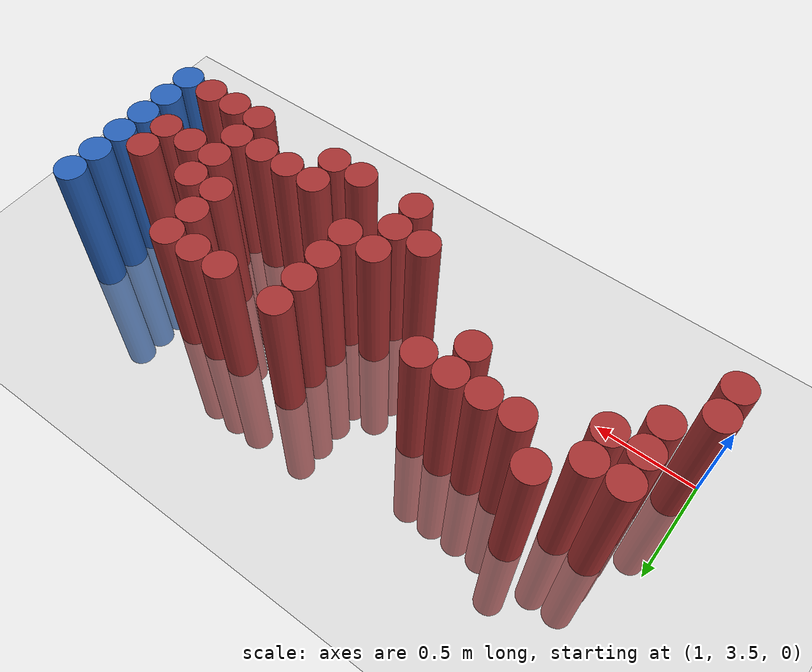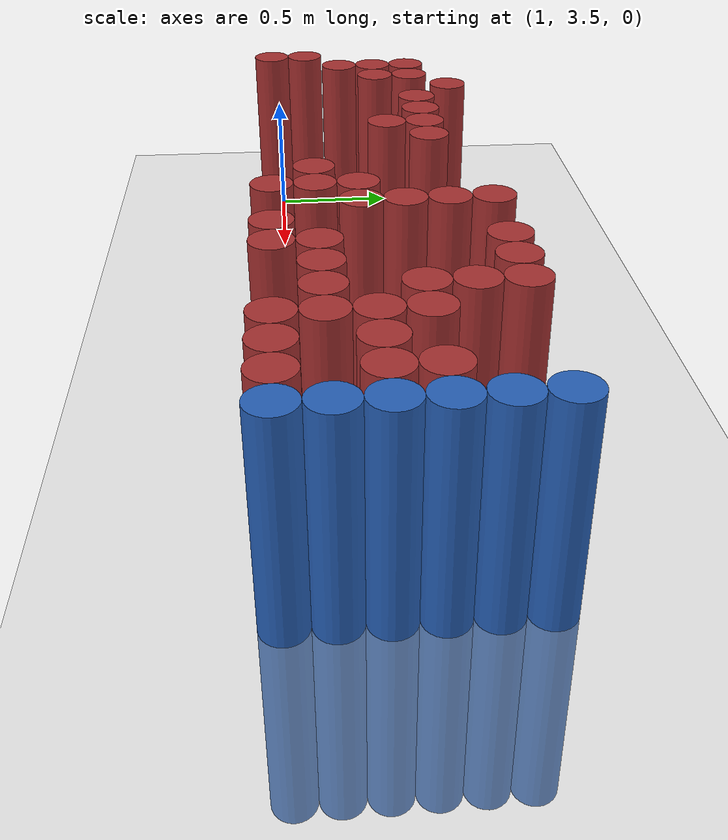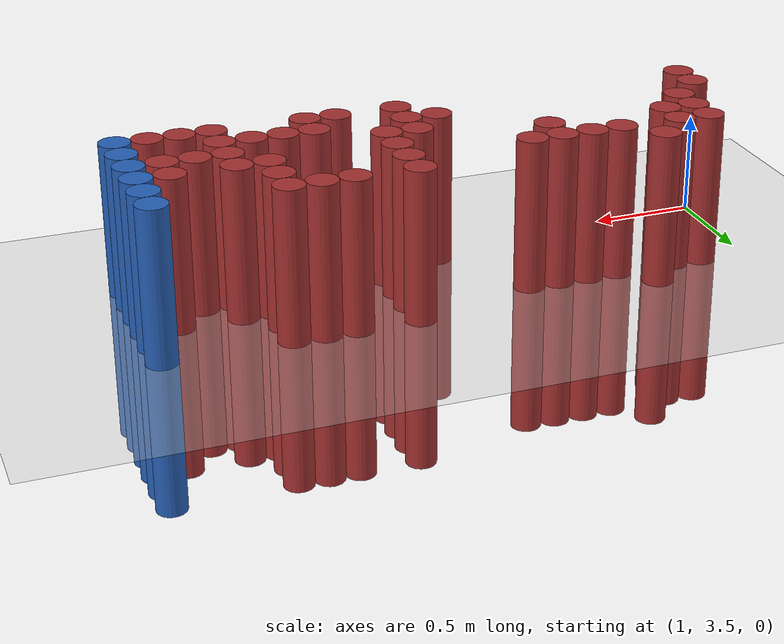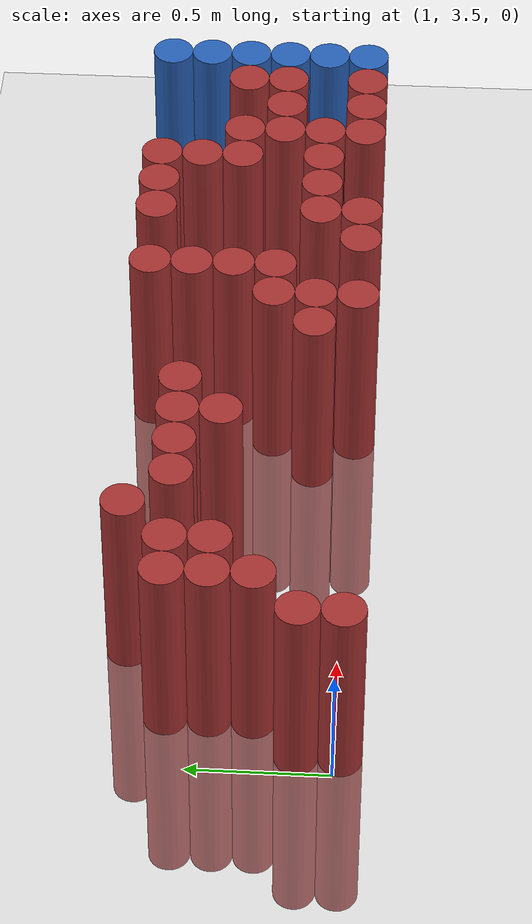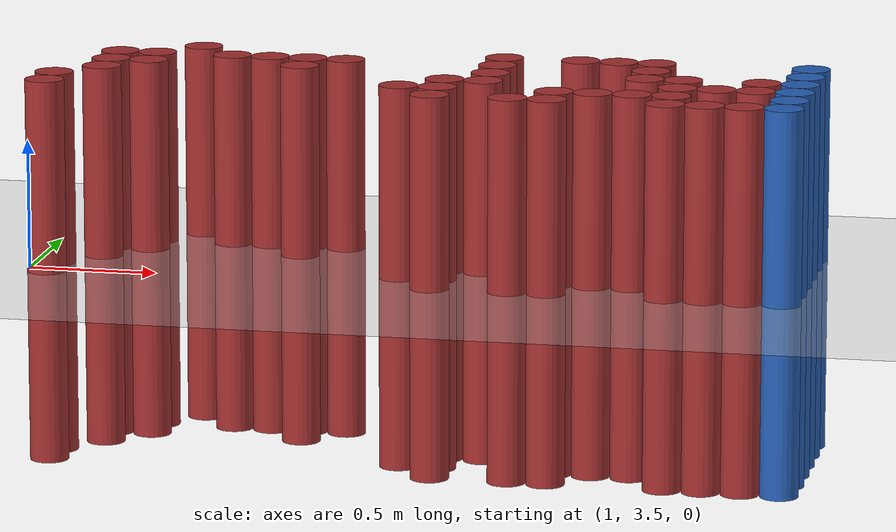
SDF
<sdf version="1.6">
 <world name="default">
  <model name="ground_plane">
   <static>1</static>
   <link name="link">
    <collision name="collision">
     <geometry><plane><normal>0 0 1</normal><size>100 100</size></plane></geometry>
     <surface><friction><ode><mu>100</mu><mu2>50</mu2></ode></friction></surface>
    </collision>
    <visual name="visual">
     <cast_shadows>0</cast_shadows>
     <geometry><plane><normal>0 0 1</normal><size>100 100</size></plane></geometry>
     <material>
      <script><uri>file://media/materials/scripts/gazebo.material</uri><name>Gazebo/Grey</name></script>
     </material>
    </visual>
   </link>
  </model>
  <model name="unit_cylinder_160">
   <static>1</static>
   <pose>3.925000 3.475000 0.000000 0.000000 0.000000 0.000000</pose>
   <link name="link">
    <inertial>
     <mass>1</mass>
     <inertia><ixx>0.145833</ixx><ixy>0</ixy><ixz>0</ixz><iyy>0.145833</iyy><iyz>0</iyz><izz>0.125</izz></inertia>
    </inertial>
    <collision name="collision">
     <geometry><cylinder><radius>0.075000</radius><length>1.5</length></cylinder></geometry>
    </collision>
    <visual name="visual">
     <geometry><cylinder><radius>0.075000</radius><length>1.5</length></cylinder></geometry>
     <material>
      <ambient>0.152000 0.379000 0.720000 1</ambient>
      <diffuse>0.152000 0.379000 0.720000 1</diffuse>
     </material>
     <material>
      <script><name>Gazebo/Grey</name><uri>file://media/materials/scripts/gazebo.material</uri></script>
     </material>
    </visual>
   </link>
  </model>
  <model name="unit_cylinder_162">
   <static>1</static>
   <pose>3.925000 3.625000 0.000000 0.000000 0.000000 0.000000</pose>
   <link name="link">
    <inertial>
     <mass>1</mass>
     <inertia><ixx>0.145833</ixx><ixy>0</ixy><ixz>0</ixz><iyy>0.145833</iyy><iyz>0</iyz><izz>0.125</izz></inertia>
    </inertial>
    <collision name="collision">
     <geometry><cylinder><radius>0.075000</radius><length>1.5</length></cylinder></geometry>
    </collision>
    <visual name="visual">
     <geometry><cylinder><radius>0.075000</radius><length>1.5</length></cylinder></geometry>
     <material>
      <ambient>0.152000 0.379000 0.720000 1</ambient>
      <diffuse>0.152000 0.379000 0.720000 1</diffuse>
     </material>
     <material>
      <script><name>Gazebo/Grey</name><uri>file://media/materials/scripts/gazebo.material</uri></script>
     </material>
    </visual>
   </link>
  </model>
  <model name="unit_cylinder_164">
   <static>1</static>
   <pose>3.925000 3.775000 0.000000 0.000000 0.000000 0.000000</pose>
   <link name="link">
    <inertial>
     <mass>1</mass>
     <inertia><ixx>0.145833</ixx><ixy>0</ixy><ixz>0</ixz><iyy>0.145833</iyy><iyz>0</iyz><izz>0.125</izz></inertia>
    </inertial>
    <collision name="collision">
     <geometry><cylinder><radius>0.075000</radius><length>1.5</length></cylinder></geometry>
    </collision>
    <visual name="visual">
     <geometry><cylinder><radius>0.075000</radius><length>1.5</length></cylinder></geometry>
     <material>
      <ambient>0.152000 0.379000 0.720000 1</ambient>
      <diffuse>0.152000 0.379000 0.720000 1</diffuse>
     </material>
     <material>
      <script><name>Gazebo/Grey</name><uri>file://media/materials/scripts/gazebo.material</uri></script>
     </material>
    </visual>
   </link>
  </model>
  <model name="unit_cylinder_166">
   <static>1</static>
   <pose>3.925000 3.925000 0.000000 0.000000 0.000000 0.000000</pose>
   <link name="link">
    <inertial>
     <mass>1</mass>
     <inertia><ixx>0.145833</ixx><ixy>0</ixy><ixz>0</ixz><iyy>0.145833</iyy><iyz>0</iyz><izz>0.125</izz></inertia>
    </inertial>
    <collision name="collision">
     <geometry><cylinder><radius>0.075000</radius><length>1.5</length></cylinder></geometry>
    </collision>
    <visual name="visual">
     <geometry><cylinder><radius>0.075000</radius><length>1.5</length></cylinder></geometry>
     <material>
      <ambient>0.152000 0.379000 0.720000 1</ambient>
      <diffuse>0.152000 0.379000 0.720000 1</diffuse>
     </material>
     <material>
      <script><name>Gazebo/Grey</name><uri>file://media/materials/scripts/gazebo.material</uri></script>
     </material>
    </visual>
   </link>
  </model>
  <model name="unit_cylinder_168">
   <static>1</static>
   <pose>3.925000 4.075000 0.000000 0.000000 0.000000 0.000000</pose>
   <link name="link">
    <inertial>
     <mass>1</mass>
     <inertia><ixx>0.145833</ixx><ixy>0</ixy><ixz>0</ixz><iyy>0.145833</iyy><iyz>0</iyz><izz>0.125</izz></inertia>
    </inertial>
    <collision name="collision">
     <geometry><cylinder><radius>0.075000</radius><length>1.5</length></cylinder></geometry>
    </collision>
    <visual name="visual">
     <geometry><cylinder><radius>0.075000</radius><length>1.5</length></cylinder></geometry>
     <material>
      <ambient>0.152000 0.379000 0.720000 1</ambient>
      <diffuse>0.152000 0.379000 0.720000 1</diffuse>
     </material>
     <material>
      <script><name>Gazebo/Grey</name><uri>file://media/materials/scripts/gazebo.material</uri></script>
     </material>
    </visual>
   </link>
  </model>
  <model name="unit_cylinder_170">
   <static>1</static>
   <pose>3.925000 4.225000 0.000000 0.000000 0.000000 0.000000</pose>
   <link name="link">
    <inertial>
     <mass>1</mass>
     <inertia><ixx>0.145833</ixx><ixy>0</ixy><ixz>0</ixz><iyy>0.145833</iyy><iyz>0</iyz><izz>0.125</izz></inertia>
    </inertial>
    <collision name="collision">
     <geometry><cylinder><radius>0.075000</radius><length>1.5</length></cylinder></geometry>
    </collision>
    <visual name="visual">
     <geometry><cylinder><radius>0.075000</radius><length>1.5</length></cylinder></geometry>
     <material>
      <ambient>0.152000 0.379000 0.720000 1</ambient>
      <diffuse>0.152000 0.379000 0.720000 1</diffuse>
     </material>
     <material>
      <script><name>Gazebo/Grey</name><uri>file://media/materials/scripts/gazebo.material</uri></script>
     </material>
    </visual>
   </link>
  </model>
  <model name="unit_cylinder_408">
   <static>1</static>
   <pose>1.075000 3.475000 0.000000 0.000000 0.000000 0.000000</pose>
   <link name="link">
    <inertial>
     <mass>1</mass>
     <inertia><ixx>0.145833</ixx><ixy>0</ixy><ixz>0</ixz><iyy>0.145833</iyy><iyz>0</iyz><izz>0.125</izz></inertia>
    </inertial>
    <collision name="collision">
     <geometry><cylinder><radius>0.075000</radius><length>1.5</length></cylinder></geometry>
    </collision>
    <visual name="visual">
     <geometry><cylinder><radius>0.075000</radius><length>1.5</length></cylinder></geometry>
     <material>
      <ambient>0.648000 0.192000 0.192000 1</ambient>
      <diffuse>0.648000 0.192000 0.192000 1</diffuse>
     </material>
     <material>
      <script><name>Gazebo/Grey</name><uri>file://media/materials/scripts/gazebo.material</uri></script>
     </material>
    </visual>
   </link>
  </model>
  <model name="unit_cylinder_409">
   <static>1</static>
   <pose>1.075000 3.625000 0.000000 0.000000 0.000000 0.000000</pose>
   <link name="link">
    <inertial>
     <mass>1</mass>
     <inertia><ixx>0.145833</ixx><ixy>0</ixy><ixz>0</ixz><iyy>0.145833</iyy><iyz>0</iyz><izz>0.125</izz></inertia>
    </inertial>
    <collision name="collision">
     <geometry><cylinder><radius>0.075000</radius><length>1.5</length></cylinder></geometry>
    </collision>
    <visual name="visual">
     <geometry><cylinder><radius>0.075000</radius><length>1.5</length></cylinder></geometry>
     <material>
      <ambient>0.648000 0.192000 0.192000 1</ambient>
      <diffuse>0.648000 0.192000 0.192000 1</diffuse>
     </material>
     <material>
      <script><name>Gazebo/Grey</name><uri>file://media/materials/scripts/gazebo.material</uri></script>
     </material>
    </visual>
   </link>
  </model>
  <model name="unit_cylinder_417">
   <static>1</static>
   <pose>1.225000 3.775000 0.000000 0.000000 0.000000 0.000000</pose>
   <link name="link">
    <inertial>
     <mass>1</mass>
     <inertia><ixx>0.145833</ixx><ixy>0</ixy><ixz>0</ixz><iyy>0.145833</iyy><iyz>0</iyz><izz>0.125</izz></inertia>
    </inertial>
    <collision name="collision">
     <geometry><cylinder><radius>0.075000</radius><length>1.5</length></cylinder></geometry>
    </collision>
    <visual name="visual">
     <geometry><cylinder><radius>0.075000</radius><length>1.5</length></cylinder></geometry>
     <material>
      <ambient>0.648000 0.192000 0.192000 1</ambient>
      <diffuse>0.648000 0.192000 0.192000 1</diffuse>
     </material>
     <material>
      <script><name>Gazebo/Grey</name><uri>file://media/materials/scripts/gazebo.material</uri></script>
     </material>
    </visual>
   </link>
  </model>
  <model name="unit_cylinder_418">
   <static>1</static>
   <pose>1.225000 3.925000 0.000000 0.000000 0.000000 0.000000</pose>
   <link name="link">
    <inertial>
     <mass>1</mass>
     <inertia><ixx>0.145833</ixx><ixy>0</ixy><ixz>0</ixz><iyy>0.145833</iyy><iyz>0</iyz><izz>0.125</izz></inertia>
    </inertial>
    <collision name="collision">
     <geometry><cylinder><radius>0.075000</radius><length>1.5</length></cylinder></geometry>
    </collision>
    <visual name="visual">
     <geometry><cylinder><radius>0.075000</radius><length>1.5</length></cylinder></geometry>
     <material>
      <ambient>0.648000 0.192000 0.192000 1</ambient>
      <diffuse>0.648000 0.192000 0.192000 1</diffuse>
     </material>
     <material>
      <script><name>Gazebo/Grey</name><uri>file://media/materials/scripts/gazebo.material</uri></script>
     </material>
    </visual>
   </link>
  </model>
  <model name="unit_cylinder_419">
   <static>1</static>
   <pose>1.225000 4.075000 0.000000 0.000000 0.000000 0.000000</pose>
   <link name="link">
    <inertial>
     <mass>1</mass>
     <inertia><ixx>0.145833</ixx><ixy>0</ixy><ixz>0</ixz><iyy>0.145833</iyy><iyz>0</iyz><izz>0.125</izz></inertia>
    </inertial>
    <collision name="collision">
     <geometry><cylinder><radius>0.075000</radius><length>1.5</length></cylinder></geometry>
    </collision>
    <visual name="visual">
     <geometry><cylinder><radius>0.075000</radius><length>1.5</length></cylinder></geometry>
     <material>
      <ambient>0.648000 0.192000 0.192000 1</ambient>
      <diffuse>0.648000 0.192000 0.192000 1</diffuse>
     </material>
     <material>
      <script><name>Gazebo/Grey</name><uri>file://media/materials/scripts/gazebo.material</uri></script>
     </material>
    </visual>
   </link>
  </model>
  <model name="unit_cylinder_426">
   <static>1</static>
   <pose>1.375000 3.925000 0.000000 0.000000 0.000000 0.000000</pose>
   <link name="link">
    <inertial>
     <mass>1</mass>
     <inertia><ixx>0.145833</ixx><ixy>0</ixy><ixz>0</ixz><iyy>0.145833</iyy><iyz>0</iyz><izz>0.125</izz></inertia>
    </inertial>
    <collision name="collision">
     <geometry><cylinder><radius>0.075000</radius><length>1.5</length></cylinder></geometry>
    </collision>
    <visual name="visual">
     <geometry><cylinder><radius>0.075000</radius><length>1.5</length></cylinder></geometry>
     <material>
      <ambient>0.648000 0.192000 0.192000 1</ambient>
      <diffuse>0.648000 0.192000 0.192000 1</diffuse>
     </material>
     <material>
      <script><name>Gazebo/Grey</name><uri>file://media/materials/scripts/gazebo.material</uri></script>
     </material>
    </visual>
   </link>
  </model>
  <model name="unit_cylinder_427">
   <static>1</static>
   <pose>1.375000 4.075000 0.000000 0.000000 0.000000 0.000000</pose>
   <link name="link">
    <inertial>
     <mass>1</mass>
     <inertia><ixx>0.145833</ixx><ixy>0</ixy><ixz>0</ixz><iyy>0.145833</iyy><iyz>0</iyz><izz>0.125</izz></inertia>
    </inertial>
    <collision name="collision">
     <geometry><cylinder><radius>0.075000</radius><length>1.5</length></cylinder></geometry>
    </collision>
    <visual name="visual">
     <geometry><cylinder><radius>0.075000</radius><length>1.5</length></cylinder></geometry>
     <material>
      <ambient>0.648000 0.192000 0.192000 1</ambient>
      <diffuse>0.648000 0.192000 0.192000 1</diffuse>
     </material>
     <material>
      <script><name>Gazebo/Grey</name><uri>file://media/materials/scripts/gazebo.material</uri></script>
     </material>
    </visual>
   </link>
  </model>
  <model name="unit_cylinder_435">
   <static>1</static>
   <pose>1.525000 4.225000 0.000000 0.000000 0.000000 0.000000</pose>
   <link name="link">
    <inertial>
     <mass>1</mass>
     <inertia><ixx>0.145833</ixx><ixy>0</ixy><ixz>0</ixz><iyy>0.145833</iyy><iyz>0</iyz><izz>0.125</izz></inertia>
    </inertial>
    <collision name="collision">
     <geometry><cylinder><radius>0.075000</radius><length>1.5</length></cylinder></geometry>
    </collision>
    <visual name="visual">
     <geometry><cylinder><radius>0.075000</radius><length>1.5</length></cylinder></geometry>
     <material>
      <ambient>0.648000 0.192000 0.192000 1</ambient>
      <diffuse>0.648000 0.192000 0.192000 1</diffuse>
     </material>
     <material>
      <script><name>Gazebo/Grey</name><uri>file://media/materials/scripts/gazebo.material</uri></script>
     </material>
    </visual>
   </link>
  </model>
  <model name="unit_cylinder_444">
   <static>1</static>
   <pose>1.675000 4.075000 0.000000 0.000000 0.000000 0.000000</pose>
   <link name="link">
    <inertial>
     <mass>1</mass>
     <inertia><ixx>0.145833</ixx><ixy>0</ixy><ixz>0</ixz><iyy>0.145833</iyy><iyz>0</iyz><izz>0.125</izz></inertia>
    </inertial>
    <collision name="collision">
     <geometry><cylinder><radius>0.075000</radius><length>1.5</length></cylinder></geometry>
    </collision>
    <visual name="visual">
     <geometry><cylinder><radius>0.075000</radius><length>1.5</length></cylinder></geometry>
     <material>
      <ambient>0.648000 0.192000 0.192000 1</ambient>
      <diffuse>0.648000 0.192000 0.192000 1</diffuse>
     </material>
     <material>
      <script><name>Gazebo/Grey</name><uri>file://media/materials/scripts/gazebo.material</uri></script>
     </material>
    </visual>
   </link>
  </model>
  <model name="unit_cylinder_452">
   <static>1</static>
   <pose>1.825000 4.075000 0.000000 0.000000 0.000000 0.000000</pose>
   <link name="link">
    <inertial>
     <mass>1</mass>
     <inertia><ixx>0.145833</ixx><ixy>0</ixy><ixz>0</ixz><iyy>0.145833</iyy><iyz>0</iyz><izz>0.125</izz></inertia>
    </inertial>
    <collision name="collision">
     <geometry><cylinder><radius>0.075000</radius><length>1.5</length></cylinder></geometry>
    </collision>
    <visual name="visual">
     <geometry><cylinder><radius>0.075000</radius><length>1.5</length></cylinder></geometry>
     <material>
      <ambient>0.648000 0.192000 0.192000 1</ambient>
      <diffuse>0.648000 0.192000 0.192000 1</diffuse>
     </material>
     <material>
      <script><name>Gazebo/Grey</name><uri>file://media/materials/scripts/gazebo.material</uri></script>
     </material>
    </visual>
   </link>
  </model>
  <model name="unit_cylinder_464">
   <static>1</static>
   <pose>1.975000 3.925000 0.000000 0.000000 0.000000 0.000000</pose>
   <link name="link">
    <inertial>
     <mass>1</mass>
     <inertia><ixx>0.145833</ixx><ixy>0</ixy><ixz>0</ixz><iyy>0.145833</iyy><iyz>0</iyz><izz>0.125</izz></inertia>
    </inertial>
    <collision name="collision">
     <geometry><cylinder><radius>0.075000</radius><length>1.5</length></cylinder></geometry>
    </collision>
    <visual name="visual">
     <geometry><cylinder><radius>0.075000</radius><length>1.5</length></cylinder></geometry>
     <material>
      <ambient>0.648000 0.192000 0.192000 1</ambient>
      <diffuse>0.648000 0.192000 0.192000 1</diffuse>
     </material>
     <material>
      <script><name>Gazebo/Grey</name><uri>file://media/materials/scripts/gazebo.material</uri></script>
     </material>
    </visual>
   </link>
  </model>
  <model name="unit_cylinder_465">
   <static>1</static>
   <pose>1.975000 4.075000 0.000000 0.000000 0.000000 0.000000</pose>
   <link name="link">
    <inertial>
     <mass>1</mass>
     <inertia><ixx>0.145833</ixx><ixy>0</ixy><ixz>0</ixz><iyy>0.145833</iyy><iyz>0</iyz><izz>0.125</izz></inertia>
    </inertial>
    <collision name="collision">
     <geometry><cylinder><radius>0.075000</radius><length>1.5</length></cylinder></geometry>
    </collision>
    <visual name="visual">
     <geometry><cylinder><radius>0.075000</radius><length>1.5</length></cylinder></geometry>
     <material>
      <ambient>0.648000 0.192000 0.192000 1</ambient>
      <diffuse>0.648000 0.192000 0.192000 1</diffuse>
     </material>
     <material>
      <script><name>Gazebo/Grey</name><uri>file://media/materials/scripts/gazebo.material</uri></script>
     </material>
    </visual>
   </link>
  </model>
  <model name="unit_cylinder_475">
   <static>1</static>
   <pose>2.125000 4.075000 0.000000 0.000000 0.000000 0.000000</pose>
   <link name="link">
    <inertial>
     <mass>1</mass>
     <inertia><ixx>0.145833</ixx><ixy>0</ixy><ixz>0</ixz><iyy>0.145833</iyy><iyz>0</iyz><izz>0.125</izz></inertia>
    </inertial>
    <collision name="collision">
     <geometry><cylinder><radius>0.075000</radius><length>1.5</length></cylinder></geometry>
    </collision>
    <visual name="visual">
     <geometry><cylinder><radius>0.075000</radius><length>1.5</length></cylinder></geometry>
     <material>
      <ambient>0.648000 0.192000 0.192000 1</ambient>
      <diffuse>0.648000 0.192000 0.192000 1</diffuse>
     </material>
     <material>
      <script><name>Gazebo/Grey</name><uri>file://media/materials/scripts/gazebo.material</uri></script>
     </material>
    </visual>
   </link>
  </model>
  <model name="unit_cylinder_487">
   <static>1</static>
   <pose>2.425000 3.625000 0.000000 0.000000 0.000000 0.000000</pose>
   <link name="link">
    <inertial>
     <mass>1</mass>
     <inertia><ixx>0.145833</ixx><ixy>0</ixy><ixz>0</ixz><iyy>0.145833</iyy><iyz>0</iyz><izz>0.125</izz></inertia>
    </inertial>
    <collision name="collision">
     <geometry><cylinder><radius>0.075000</radius><length>1.5</length></cylinder></geometry>
    </collision>
    <visual name="visual">
     <geometry><cylinder><radius>0.075000</radius><length>1.5</length></cylinder></geometry>
     <material>
      <ambient>0.648000 0.192000 0.192000 1</ambient>
      <diffuse>0.648000 0.192000 0.192000 1</diffuse>
     </material>
     <material>
      <script><name>Gazebo/Grey</name><uri>file://media/materials/scripts/gazebo.material</uri></script>
     </material>
    </visual>
   </link>
  </model>
  <model name="unit_cylinder_497">
   <static>1</static>
   <pose>2.575000 3.475000 0.000000 0.000000 0.000000 0.000000</pose>
   <link name="link">
    <inertial>
     <mass>1</mass>
     <inertia><ixx>0.145833</ixx><ixy>0</ixy><ixz>0</ixz><iyy>0.145833</iyy><iyz>0</iyz><izz>0.125</izz></inertia>
    </inertial>
    <collision name="collision">
     <geometry><cylinder><radius>0.075000</radius><length>1.5</length></cylinder></geometry>
    </collision>
    <visual name="visual">
     <geometry><cylinder><radius>0.075000</radius><length>1.5</length></cylinder></geometry>
     <material>
      <ambient>0.648000 0.192000 0.192000 1</ambient>
      <diffuse>0.648000 0.192000 0.192000 1</diffuse>
     </material>
     <material>
      <script><name>Gazebo/Grey</name><uri>file://media/materials/scripts/gazebo.material</uri></script>
     </material>
    </visual>
   </link>
  </model>
  <model name="unit_cylinder_498">
   <static>1</static>
   <pose>2.575000 3.625000 0.000000 0.000000 0.000000 0.000000</pose>
   <link name="link">
    <inertial>
     <mass>1</mass>
     <inertia><ixx>0.145833</ixx><ixy>0</ixy><ixz>0</ixz><iyy>0.145833</iyy><iyz>0</iyz><izz>0.125</izz></inertia>
    </inertial>
    <collision name="collision">
     <geometry><cylinder><radius>0.075000</radius><length>1.5</length></cylinder></geometry>
    </collision>
    <visual name="visual">
     <geometry><cylinder><radius>0.075000</radius><length>1.5</length></cylinder></geometry>
     <material>
      <ambient>0.648000 0.192000 0.192000 1</ambient>
      <diffuse>0.648000 0.192000 0.192000 1</diffuse>
     </material>
     <material>
      <script><name>Gazebo/Grey</name><uri>file://media/materials/scripts/gazebo.material</uri></script>
     </material>
    </visual>
   </link>
  </model>
  <model name="unit_cylinder_499">
   <static>1</static>
   <pose>2.575000 3.775000 0.000000 0.000000 0.000000 0.000000</pose>
   <link name="link">
    <inertial>
     <mass>1</mass>
     <inertia><ixx>0.145833</ixx><ixy>0</ixy><ixz>0</ixz><iyy>0.145833</iyy><iyz>0</iyz><izz>0.125</izz></inertia>
    </inertial>
    <collision name="collision">
     <geometry><cylinder><radius>0.075000</radius><length>1.5</length></cylinder></geometry>
    </collision>
    <visual name="visual">
     <geometry><cylinder><radius>0.075000</radius><length>1.5</length></cylinder></geometry>
     <material>
      <ambient>0.648000 0.192000 0.192000 1</ambient>
      <diffuse>0.648000 0.192000 0.192000 1</diffuse>
     </material>
     <material>
      <script><name>Gazebo/Grey</name><uri>file://media/materials/scripts/gazebo.material</uri></script>
     </material>
    </visual>
   </link>
  </model>
  <model name="unit_cylinder_508">
   <static>1</static>
   <pose>2.725000 3.775000 0.000000 0.000000 0.000000 0.000000</pose>
   <link name="link">
    <inertial>
     <mass>1</mass>
     <inertia><ixx>0.145833</ixx><ixy>0</ixy><ixz>0</ixz><iyy>0.145833</iyy><iyz>0</iyz><izz>0.125</izz></inertia>
    </inertial>
    <collision name="collision">
     <geometry><cylinder><radius>0.075000</radius><length>1.5</length></cylinder></geometry>
    </collision>
    <visual name="visual">
     <geometry><cylinder><radius>0.075000</radius><length>1.5</length></cylinder></geometry>
     <material>
      <ambient>0.648000 0.192000 0.192000 1</ambient>
      <diffuse>0.648000 0.192000 0.192000 1</diffuse>
     </material>
     <material>
      <script><name>Gazebo/Grey</name><uri>file://media/materials/scripts/gazebo.material</uri></script>
     </material>
    </visual>
   </link>
  </model>
  <model name="unit_cylinder_509">
   <static>1</static>
   <pose>2.725000 3.925000 0.000000 0.000000 0.000000 0.000000</pose>
   <link name="link">
    <inertial>
     <mass>1</mass>
     <inertia><ixx>0.145833</ixx><ixy>0</ixy><ixz>0</ixz><iyy>0.145833</iyy><iyz>0</iyz><izz>0.125</izz></inertia>
    </inertial>
    <collision name="collision">
     <geometry><cylinder><radius>0.075000</radius><length>1.5</length></cylinder></geometry>
    </collision>
    <visual name="visual">
     <geometry><cylinder><radius>0.075000</radius><length>1.5</length></cylinder></geometry>
     <material>
      <ambient>0.648000 0.192000 0.192000 1</ambient>
      <diffuse>0.648000 0.192000 0.192000 1</diffuse>
     </material>
     <material>
      <script><name>Gazebo/Grey</name><uri>file://media/materials/scripts/gazebo.material</uri></script>
     </material>
    </visual>
   </link>
  </model>
  <model name="unit_cylinder_510">
   <static>1</static>
   <pose>2.725000 4.075000 0.000000 0.000000 0.000000 0.000000</pose>
   <link name="link">
    <inertial>
     <mass>1</mass>
     <inertia><ixx>0.145833</ixx><ixy>0</ixy><ixz>0</ixz><iyy>0.145833</iyy><iyz>0</iyz><izz>0.125</izz></inertia>
    </inertial>
    <collision name="collision">
     <geometry><cylinder><radius>0.075000</radius><length>1.5</length></cylinder></geometry>
    </collision>
    <visual name="visual">
     <geometry><cylinder><radius>0.075000</radius><length>1.5</length></cylinder></geometry>
     <material>
      <ambient>0.648000 0.192000 0.192000 1</ambient>
      <diffuse>0.648000 0.192000 0.192000 1</diffuse>
     </material>
     <material>
      <script><name>Gazebo/Grey</name><uri>file://media/materials/scripts/gazebo.material</uri></script>
     </material>
    </visual>
   </link>
  </model>
  <model name="unit_cylinder_511">
   <static>1</static>
   <pose>2.725000 4.225000 0.000000 0.000000 0.000000 0.000000</pose>
   <link name="link">
    <inertial>
     <mass>1</mass>
     <inertia><ixx>0.145833</ixx><ixy>0</ixy><ixz>0</ixz><iyy>0.145833</iyy><iyz>0</iyz><izz>0.125</izz></inertia>
    </inertial>
    <collision name="collision">
     <geometry><cylinder><radius>0.075000</radius><length>1.5</length></cylinder></geometry>
    </collision>
    <visual name="visual">
     <geometry><cylinder><radius>0.075000</radius><length>1.5</length></cylinder></geometry>
     <material>
      <ambient>0.648000 0.192000 0.192000 1</ambient>
      <diffuse>0.648000 0.192000 0.192000 1</diffuse>
     </material>
     <material>
      <script><name>Gazebo/Grey</name><uri>file://media/materials/scripts/gazebo.material</uri></script>
     </material>
    </visual>
   </link>
  </model>
  <model name="unit_cylinder_521">
   <static>1</static>
   <pose>2.875000 3.475000 0.000000 0.000000 0.000000 0.000000</pose>
   <link name="link">
    <inertial>
     <mass>1</mass>
     <inertia><ixx>0.145833</ixx><ixy>0</ixy><ixz>0</ixz><iyy>0.145833</iyy><iyz>0</iyz><izz>0.125</izz></inertia>
    </inertial>
    <collision name="collision">
     <geometry><cylinder><radius>0.075000</radius><length>1.5</length></cylinder></geometry>
    </collision>
    <visual name="visual">
     <geometry><cylinder><radius>0.075000</radius><length>1.5</length></cylinder></geometry>
     <material>
      <ambient>0.648000 0.192000 0.192000 1</ambient>
      <diffuse>0.648000 0.192000 0.192000 1</diffuse>
     </material>
     <material>
      <script><name>Gazebo/Grey</name><uri>file://media/materials/scripts/gazebo.material</uri></script>
     </material>
    </visual>
   </link>
  </model>
  <model name="unit_cylinder_533">
   <static>1</static>
   <pose>3.025000 3.475000 0.000000 0.000000 0.000000 0.000000</pose>
   <link name="link">
    <inertial>
     <mass>1</mass>
     <inertia><ixx>0.145833</ixx><ixy>0</ixy><ixz>0</ixz><iyy>0.145833</iyy><iyz>0</iyz><izz>0.125</izz></inertia>
    </inertial>
    <collision name="collision">
     <geometry><cylinder><radius>0.075000</radius><length>1.5</length></cylinder></geometry>
    </collision>
    <visual name="visual">
     <geometry><cylinder><radius>0.075000</radius><length>1.5</length></cylinder></geometry>
     <material>
      <ambient>0.648000 0.192000 0.192000 1</ambient>
      <diffuse>0.648000 0.192000 0.192000 1</diffuse>
     </material>
     <material>
      <script><name>Gazebo/Grey</name><uri>file://media/materials/scripts/gazebo.material</uri></script>
     </material>
    </visual>
   </link>
  </model>
  <model name="unit_cylinder_534">
   <static>1</static>
   <pose>3.025000 3.625000 0.000000 0.000000 0.000000 0.000000</pose>
   <link name="link">
    <inertial>
     <mass>1</mass>
     <inertia><ixx>0.145833</ixx><ixy>0</ixy><ixz>0</ixz><iyy>0.145833</iyy><iyz>0</iyz><izz>0.125</izz></inertia>
    </inertial>
    <collision name="collision">
     <geometry><cylinder><radius>0.075000</radius><length>1.5</length></cylinder></geometry>
    </collision>
    <visual name="visual">
     <geometry><cylinder><radius>0.075000</radius><length>1.5</length></cylinder></geometry>
     <material>
      <ambient>0.648000 0.192000 0.192000 1</ambient>
      <diffuse>0.648000 0.192000 0.192000 1</diffuse>
     </material>
     <material>
      <script><name>Gazebo/Grey</name><uri>file://media/materials/scripts/gazebo.material</uri></script>
     </material>
    </visual>
   </link>
  </model>
  <model name="unit_cylinder_535">
   <static>1</static>
   <pose>3.025000 4.225000 0.000000 0.000000 0.000000 0.000000</pose>
   <link name="link">
    <inertial>
     <mass>1</mass>
     <inertia><ixx>0.145833</ixx><ixy>0</ixy><ixz>0</ixz><iyy>0.145833</iyy><iyz>0</iyz><izz>0.125</izz></inertia>
    </inertial>
    <collision name="collision">
     <geometry><cylinder><radius>0.075000</radius><length>1.5</length></cylinder></geometry>
    </collision>
    <visual name="visual">
     <geometry><cylinder><radius>0.075000</radius><length>1.5</length></cylinder></geometry>
     <material>
      <ambient>0.648000 0.192000 0.192000 1</ambient>
      <diffuse>0.648000 0.192000 0.192000 1</diffuse>
     </material>
     <material>
      <script><name>Gazebo/Grey</name><uri>file://media/materials/scripts/gazebo.material</uri></script>
     </material>
    </visual>
   </link>
  </model>
  <model name="unit_cylinder_548">
   <static>1</static>
   <pose>3.175000 3.625000 0.000000 0.000000 0.000000 0.000000</pose>
   <link name="link">
    <inertial>
     <mass>1</mass>
     <inertia><ixx>0.145833</ixx><ixy>0</ixy><ixz>0</ixz><iyy>0.145833</iyy><iyz>0</iyz><izz>0.125</izz></inertia>
    </inertial>
    <collision name="collision">
     <geometry><cylinder><radius>0.075000</radius><length>1.5</length></cylinder></geometry>
    </collision>
    <visual name="visual">
     <geometry><cylinder><radius>0.075000</radius><length>1.5</length></cylinder></geometry>
     <material>
      <ambient>0.648000 0.192000 0.192000 1</ambient>
      <diffuse>0.648000 0.192000 0.192000 1</diffuse>
     </material>
     <material>
      <script><name>Gazebo/Grey</name><uri>file://media/materials/scripts/gazebo.material</uri></script>
     </material>
    </visual>
   </link>
  </model>
  <model name="unit_cylinder_549">
   <static>1</static>
   <pose>3.175000 4.225000 0.000000 0.000000 0.000000 0.000000</pose>
   <link name="link">
    <inertial>
     <mass>1</mass>
     <inertia><ixx>0.145833</ixx><ixy>0</ixy><ixz>0</ixz><iyy>0.145833</iyy><iyz>0</iyz><izz>0.125</izz></inertia>
    </inertial>
    <collision name="collision">
     <geometry><cylinder><radius>0.075000</radius><length>1.5</length></cylinder></geometry>
    </collision>
    <visual name="visual">
     <geometry><cylinder><radius>0.075000</radius><length>1.5</length></cylinder></geometry>
     <material>
      <ambient>0.648000 0.192000 0.192000 1</ambient>
      <diffuse>0.648000 0.192000 0.192000 1</diffuse>
     </material>
     <material>
      <script><name>Gazebo/Grey</name><uri>file://media/materials/scripts/gazebo.material</uri></script>
     </material>
    </visual>
   </link>
  </model>
  <model name="unit_cylinder_558">
   <static>1</static>
   <pose>3.325000 3.625000 0.000000 0.000000 0.000000 0.000000</pose>
   <link name="link">
    <inertial>
     <mass>1</mass>
     <inertia><ixx>0.145833</ixx><ixy>0</ixy><ixz>0</ixz><iyy>0.145833</iyy><iyz>0</iyz><izz>0.125</izz></inertia>
    </inertial>
    <collision name="collision">
     <geometry><cylinder><radius>0.075000</radius><length>1.5</length></cylinder></geometry>
    </collision>
    <visual name="visual">
     <geometry><cylinder><radius>0.075000</radius><length>1.5</length></cylinder></geometry>
     <material>
      <ambient>0.648000 0.192000 0.192000 1</ambient>
      <diffuse>0.648000 0.192000 0.192000 1</diffuse>
     </material>
     <material>
      <script><name>Gazebo/Grey</name><uri>file://media/materials/scripts/gazebo.material</uri></script>
     </material>
    </visual>
   </link>
  </model>
  <model name="unit_cylinder_559">
   <static>1</static>
   <pose>3.325000 3.925000 0.000000 0.000000 0.000000 0.000000</pose>
   <link name="link">
    <inertial>
     <mass>1</mass>
     <inertia><ixx>0.145833</ixx><ixy>0</ixy><ixz>0</ixz><iyy>0.145833</iyy><iyz>0</iyz><izz>0.125</izz></inertia>
    </inertial>
    <collision name="collision">
     <geometry><cylinder><radius>0.075000</radius><length>1.5</length></cylinder></geometry>
    </collision>
    <visual name="visual">
     <geometry><cylinder><radius>0.075000</radius><length>1.5</length></cylinder></geometry>
     <material>
      <ambient>0.648000 0.192000 0.192000 1</ambient>
      <diffuse>0.648000 0.192000 0.192000 1</diffuse>
     </material>
     <material>
      <script><name>Gazebo/Grey</name><uri>file://media/materials/scripts/gazebo.material</uri></script>
     </material>
    </visual>
   </link>
  </model>
  <model name="unit_cylinder_560">
   <static>1</static>
   <pose>3.325000 4.075000 0.000000 0.000000 0.000000 0.000000</pose>
   <link name="link">
    <inertial>
     <mass>1</mass>
     <inertia><ixx>0.145833</ixx><ixy>0</ixy><ixz>0</ixz><iyy>0.145833</iyy><iyz>0</iyz><izz>0.125</izz></inertia>
    </inertial>
    <collision name="collision">
     <geometry><cylinder><radius>0.075000</radius><length>1.5</length></cylinder></geometry>
    </collision>
    <visual name="visual">
     <geometry><cylinder><radius>0.075000</radius><length>1.5</length></cylinder></geometry>
     <material>
      <ambient>0.648000 0.192000 0.192000 1</ambient>
      <diffuse>0.648000 0.192000 0.192000 1</diffuse>
     </material>
     <material>
      <script><name>Gazebo/Grey</name><uri>file://media/materials/scripts/gazebo.material</uri></script>
     </material>
    </visual>
   </link>
  </model>
  <model name="unit_cylinder_561">
   <static>1</static>
   <pose>3.325000 4.225000 0.000000 0.000000 0.000000 0.000000</pose>
   <link name="link">
    <inertial>
     <mass>1</mass>
     <inertia><ixx>0.145833</ixx><ixy>0</ixy><ixz>0</ixz><iyy>0.145833</iyy><iyz>0</iyz><izz>0.125</izz></inertia>
    </inertial>
    <collision name="collision">
     <geometry><cylinder><radius>0.075000</radius><length>1.5</length></cylinder></geometry>
    </collision>
    <visual name="visual">
     <geometry><cylinder><radius>0.075000</radius><length>1.5</length></cylinder></geometry>
     <material>
      <ambient>0.648000 0.192000 0.192000 1</ambient>
      <diffuse>0.648000 0.192000 0.192000 1</diffuse>
     </material>
     <material>
      <script><name>Gazebo/Grey</name><uri>file://media/materials/scripts/gazebo.material</uri></script>
     </material>
    </visual>
   </link>
  </model>
  <model name="unit_cylinder_573">
   <static>1</static>
   <pose>3.475000 3.475000 0.000000 0.000000 0.000000 0.000000</pose>
   <link name="link">
    <inertial>
     <mass>1</mass>
     <inertia><ixx>0.145833</ixx><ixy>0</ixy><ixz>0</ixz><iyy>0.145833</iyy><iyz>0</iyz><izz>0.125</izz></inertia>
    </inertial>
    <collision name="collision">
     <geometry><cylinder><radius>0.075000</radius><length>1.5</length></cylinder></geometry>
    </collision>
    <visual name="visual">
     <geometry><cylinder><radius>0.075000</radius><length>1.5</length></cylinder></geometry>
     <material>
      <ambient>0.648000 0.192000 0.192000 1</ambient>
      <diffuse>0.648000 0.192000 0.192000 1</diffuse>
     </material>
     <material>
      <script><name>Gazebo/Grey</name><uri>file://media/materials/scripts/gazebo.material</uri></script>
     </material>
    </visual>
   </link>
  </model>
  <model name="unit_cylinder_574">
   <static>1</static>
   <pose>3.475000 3.625000 0.000000 0.000000 0.000000 0.000000</pose>
   <link name="link">
    <inertial>
     <mass>1</mass>
     <inertia><ixx>0.145833</ixx><ixy>0</ixy><ixz>0</ixz><iyy>0.145833</iyy><iyz>0</iyz><izz>0.125</izz></inertia>
    </inertial>
    <collision name="collision">
     <geometry><cylinder><radius>0.075000</radius><length>1.5</length></cylinder></geometry>
    </collision>
    <visual name="visual">
     <geometry><cylinder><radius>0.075000</radius><length>1.5</length></cylinder></geometry>
     <material>
      <ambient>0.648000 0.192000 0.192000 1</ambient>
      <diffuse>0.648000 0.192000 0.192000 1</diffuse>
     </material>
     <material>
      <script><name>Gazebo/Grey</name><uri>file://media/materials/scripts/gazebo.material</uri></script>
     </material>
    </visual>
   </link>
  </model>
  <model name="unit_cylinder_575">
   <static>1</static>
   <pose>3.475000 3.775000 0.000000 0.000000 0.000000 0.000000</pose>
   <link name="link">
    <inertial>
     <mass>1</mass>
     <inertia><ixx>0.145833</ixx><ixy>0</ixy><ixz>0</ixz><iyy>0.145833</iyy><iyz>0</iyz><izz>0.125</izz></inertia>
    </inertial>
    <collision name="collision">
     <geometry><cylinder><radius>0.075000</radius><length>1.5</length></cylinder></geometry>
    </collision>
    <visual name="visual">
     <geometry><cylinder><radius>0.075000</radius><length>1.5</length></cylinder></geometry>
     <material>
      <ambient>0.648000 0.192000 0.192000 1</ambient>
      <diffuse>0.648000 0.192000 0.192000 1</diffuse>
     </material>
     <material>
      <script><name>Gazebo/Grey</name><uri>file://media/materials/scripts/gazebo.material</uri></script>
     </material>
    </visual>
   </link>
  </model>
  <model name="unit_cylinder_576">
   <static>1</static>
   <pose>3.475000 3.925000 0.000000 0.000000 0.000000 0.000000</pose>
   <link name="link">
    <inertial>
     <mass>1</mass>
     <inertia><ixx>0.145833</ixx><ixy>0</ixy><ixz>0</ixz><iyy>0.145833</iyy><iyz>0</iyz><izz>0.125</izz></inertia>
    </inertial>
    <collision name="collision">
     <geometry><cylinder><radius>0.075000</radius><length>1.5</length></cylinder></geometry>
    </collision>
    <visual name="visual">
     <geometry><cylinder><radius>0.075000</radius><length>1.5</length></cylinder></geometry>
     <material>
      <ambient>0.648000 0.192000 0.192000 1</ambient>
      <diffuse>0.648000 0.192000 0.192000 1</diffuse>
     </material>
     <material>
      <script><name>Gazebo/Grey</name><uri>file://media/materials/scripts/gazebo.material</uri></script>
     </material>
    </visual>
   </link>
  </model>
  <model name="unit_cylinder_591">
   <static>1</static>
   <pose>3.625000 3.475000 0.000000 0.000000 0.000000 0.000000</pose>
   <link name="link">
    <inertial>
     <mass>1</mass>
     <inertia><ixx>0.145833</ixx><ixy>0</ixy><ixz>0</ixz><iyy>0.145833</iyy><iyz>0</iyz><izz>0.125</izz></inertia>
    </inertial>
    <collision name="collision">
     <geometry><cylinder><radius>0.075000</radius><length>1.5</length></cylinder></geometry>
    </collision>
    <visual name="visual">
     <geometry><cylinder><radius>0.075000</radius><length>1.5</length></cylinder></geometry>
     <material>
      <ambient>0.648000 0.192000 0.192000 1</ambient>
      <diffuse>0.648000 0.192000 0.192000 1</diffuse>
     </material>
     <material>
      <script><name>Gazebo/Grey</name><uri>file://media/materials/scripts/gazebo.material</uri></script>
     </material>
    </visual>
   </link>
  </model>
  <model name="unit_cylinder_592">
   <static>1</static>
   <pose>3.625000 3.775000 0.000000 0.000000 0.000000 0.000000</pose>
   <link name="link">
    <inertial>
     <mass>1</mass>
     <inertia><ixx>0.145833</ixx><ixy>0</ixy><ixz>0</ixz><iyy>0.145833</iyy><iyz>0</iyz><izz>0.125</izz></inertia>
    </inertial>
    <collision name="collision">
     <geometry><cylinder><radius>0.075000</radius><length>1.5</length></cylinder></geometry>
    </collision>
    <visual name="visual">
     <geometry><cylinder><radius>0.075000</radius><length>1.5</length></cylinder></geometry>
     <material>
      <ambient>0.648000 0.192000 0.192000 1</ambient>
      <diffuse>0.648000 0.192000 0.192000 1</diffuse>
     </material>
     <material>
      <script><name>Gazebo/Grey</name><uri>file://media/materials/scripts/gazebo.material</uri></script>
     </material>
    </visual>
   </link>
  </model>
  <model name="unit_cylinder_608">
   <static>1</static>
   <pose>3.775000 3.475000 0.000000 0.000000 0.000000 0.000000</pose>
   <link name="link">
    <inertial>
     <mass>1</mass>
     <inertia><ixx>0.145833</ixx><ixy>0</ixy><ixz>0</ixz><iyy>0.145833</iyy><iyz>0</iyz><izz>0.125</izz></inertia>
    </inertial>
    <collision name="collision">
     <geometry><cylinder><radius>0.075000</radius><length>1.5</length></cylinder></geometry>
    </collision>
    <visual name="visual">
     <geometry><cylinder><radius>0.075000</radius><length>1.5</length></cylinder></geometry>
     <material>
      <ambient>0.648000 0.192000 0.192000 1</ambient>
      <diffuse>0.648000 0.192000 0.192000 1</diffuse>
     </material>
     <material>
      <script><name>Gazebo/Grey</name><uri>file://media/materials/scripts/gazebo.material</uri></script>
     </material>
    </visual>
   </link>
  </model>
  <model name="unit_cylinder_609">
   <static>1</static>
   <pose>3.775000 3.775000 0.000000 0.000000 0.000000 0.000000</pose>
   <link name="link">
    <inertial>
     <mass>1</mass>
     <inertia><ixx>0.145833</ixx><ixy>0</ixy><ixz>0</ixz><iyy>0.145833</iyy><iyz>0</iyz><izz>0.125</izz></inertia>
    </inertial>
    <collision name="collision">
     <geometry><cylinder><radius>0.075000</radius><length>1.5</length></cylinder></geometry>
    </collision>
    <visual name="visual">
     <geometry><cylinder><radius>0.075000</radius><length>1.5</length></cylinder></geometry>
     <material>
      <ambient>0.648000 0.192000 0.192000 1</ambient>
      <diffuse>0.648000 0.192000 0.192000 1</diffuse>
     </material>
     <material>
      <script><name>Gazebo/Grey</name><uri>file://media/materials/scripts/gazebo.material</uri></script>
     </material>
    </visual>
   </link>
  </model>
  <model name="unit_cylinder_610">
   <static>1</static>
   <pose>3.775000 3.925000 0.000000 0.000000 0.000000 0.000000</pose>
   <link name="link">
    <inertial>
     <mass>1</mass>
     <inertia><ixx>0.145833</ixx><ixy>0</ixy><ixz>0</ixz><iyy>0.145833</iyy><iyz>0</iyz><izz>0.125</izz></inertia>
    </inertial>
    <collision name="collision">
     <geometry><cylinder><radius>0.075000</radius><length>1.5</length></cylinder></geometry>
    </collision>
    <visual name="visual">
     <geometry><cylinder><radius>0.075000</radius><length>1.5</length></cylinder></geometry>
     <material>
      <ambient>0.648000 0.192000 0.192000 1</ambient>
      <diffuse>0.648000 0.192000 0.192000 1</diffuse>
     </material>
     <material>
      <script><name>Gazebo/Grey</name><uri>file://media/materials/scripts/gazebo.material</uri></script>
     </material>
    </visual>
   </link>
  </model>
  <model name="unit_cylinder_650">
   <static>1</static>
   <pose>3.925000 3.475000 0.000000 0.000000 0.000000 0.000000</pose>
   <link name="link">
    <inertial>
     <mass>1</mass>
     <inertia><ixx>0.145833</ixx><ixy>0</ixy><ixz>0</ixz><iyy>0.145833</iyy><iyz>0</iyz><izz>0.125</izz></inertia>
    </inertial>
    <collision name="collision">
     <geometry><cylinder><radius>0.075000</radius><length>1.5</length></cylinder></geometry>
    </collision>
    <visual name="visual">
     <geometry><cylinder><radius>0.075000</radius><length>1.5</length></cylinder></geometry>
     <material>
      <ambient>0.152000 0.379000 0.720000 1</ambient>
      <diffuse>0.152000 0.379000 0.720000 1</diffuse>
     </material>
     <material>
      <script><name>Gazebo/Grey</name><uri>file://media/materials/scripts/gazebo.material</uri></script>
     </material>
    </visual>
   </link>
  </model>
  <model name="unit_cylinder_651">
   <static>1</static>
   <pose>3.925000 3.625000 0.000000 0.000000 0.000000 0.000000</pose>
   <link name="link">
    <inertial>
     <mass>1</mass>
     <inertia><ixx>0.145833</ixx><ixy>0</ixy><ixz>0</ixz><iyy>0.145833</iyy><iyz>0</iyz><izz>0.125</izz></inertia>
    </inertial>
    <collision name="collision">
     <geometry><cylinder><radius>0.075000</radius><length>1.5</length></cylinder></geometry>
    </collision>
    <visual name="visual">
     <geometry><cylinder><radius>0.075000</radius><length>1.5</length></cylinder></geometry>
     <material>
      <ambient>0.152000 0.379000 0.720000 1</ambient>
      <diffuse>0.152000 0.379000 0.720000 1</diffuse>
     </material>
     <material>
      <script><name>Gazebo/Grey</name><uri>file://media/materials/scripts/gazebo.material</uri></script>
     </material>
    </visual>
   </link>
  </model>
  <model name="unit_cylinder_652">
   <static>1</static>
   <pose>3.925000 3.775000 0.000000 0.000000 0.000000 0.000000</pose>
   <link name="link">
    <inertial>
     <mass>1</mass>
     <inertia><ixx>0.145833</ixx><ixy>0</ixy><ixz>0</ixz><iyy>0.145833</iyy><iyz>0</iyz><izz>0.125</izz></inertia>
    </inertial>
    <collision name="collision">
     <geometry><cylinder><radius>0.075000</radius><length>1.5</length></cylinder></geometry>
    </collision>
    <visual name="visual">
     <geometry><cylinder><radius>0.075000</radius><length>1.5</length></cylinder></geometry>
     <material>
      <ambient>0.152000 0.379000 0.720000 1</ambient>
      <diffuse>0.152000 0.379000 0.720000 1</diffuse>
     </material>
     <material>
      <script><name>Gazebo/Grey</name><uri>file://media/materials/scripts/gazebo.material</uri></script>
     </material>
    </visual>
   </link>
  </model>
  <model name="unit_cylinder_653">
   <static>1</static>
   <pose>3.925000 3.925000 0.000000 0.000000 0.000000 0.000000</pose>
   <link name="link">
    <inertial>
     <mass>1</mass>
     <inertia><ixx>0.145833</ixx><ixy>0</ixy><ixz>0</ixz><iyy>0.145833</iyy><iyz>0</iyz><izz>0.125</izz></inertia>
    </inertial>
    <collision name="collision">
     <geometry><cylinder><radius>0.075000</radius><length>1.5</length></cylinder></geometry>
    </collision>
    <visual name="visual">
     <geometry><cylinder><radius>0.075000</radius><length>1.5</length></cylinder></geometry>
     <material>
      <ambient>0.152000 0.379000 0.720000 1</ambient>
      <diffuse>0.152000 0.379000 0.720000 1</diffuse>
     </material>
     <material>
      <script><name>Gazebo/Grey</name><uri>file://media/materials/scripts/gazebo.material</uri></script>
     </material>
    </visual>
   </link>
  </model>
  <model name="unit_cylinder_654">
   <static>1</static>
   <pose>3.925000 4.075000 0.000000 0.000000 0.000000 0.000000</pose>
   <link name="link">
    <inertial>
     <mass>1</mass>
     <inertia><ixx>0.145833</ixx><ixy>0</ixy><ixz>0</ixz><iyy>0.145833</iyy><iyz>0</iyz><izz>0.125</izz></inertia>
    </inertial>
    <collision name="collision">
     <geometry><cylinder><radius>0.075000</radius><length>1.5</length></cylinder></geometry>
    </collision>
    <visual name="visual">
     <geometry><cylinder><radius>0.075000</radius><length>1.5</length></cylinder></geometry>
     <material>
      <ambient>0.152000 0.379000 0.720000 1</ambient>
      <diffuse>0.152000 0.379000 0.720000 1</diffuse>
     </material>
     <material>
      <script><name>Gazebo/Grey</name><uri>file://media/materials/scripts/gazebo.material</uri></script>
     </material>
    </visual>
   </link>
  </model>
 </world>
</sdf>
